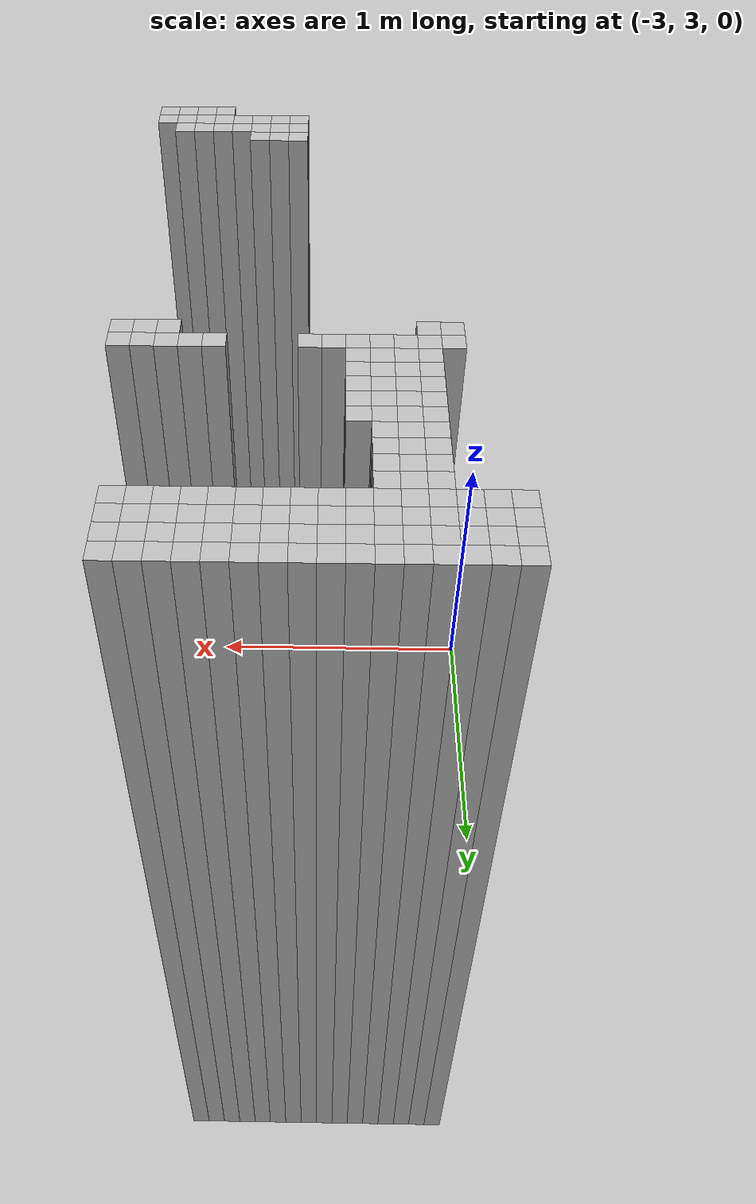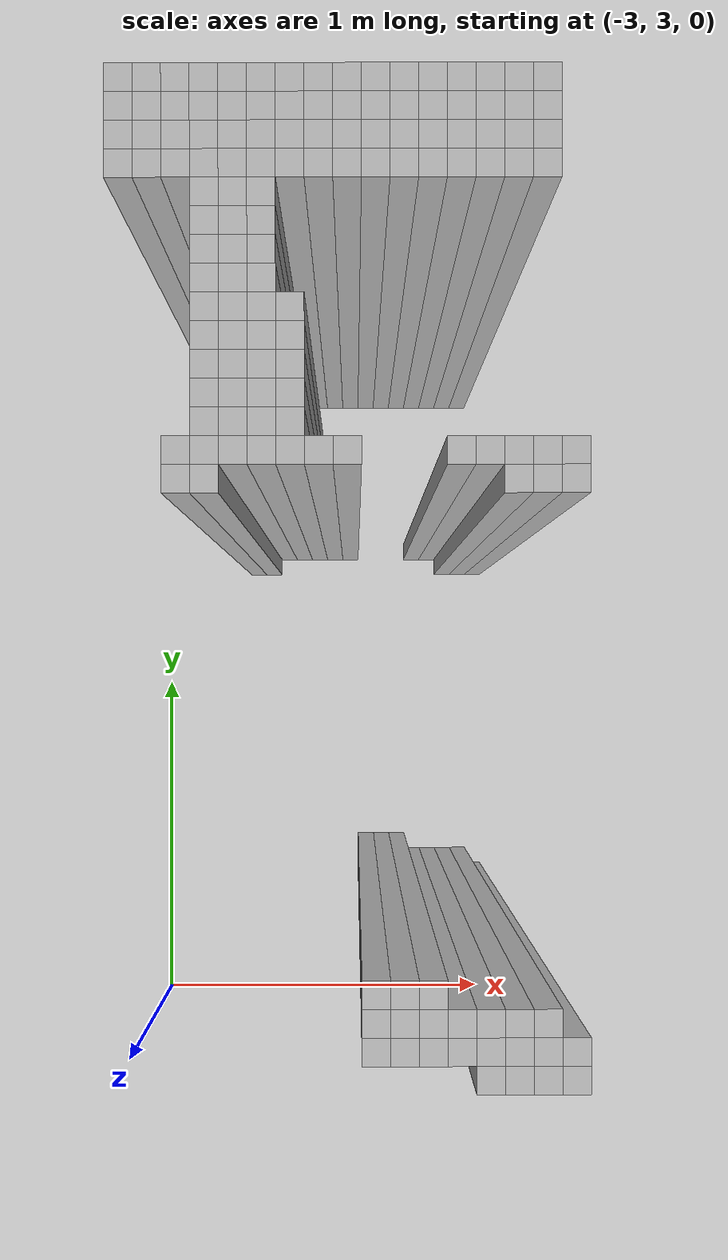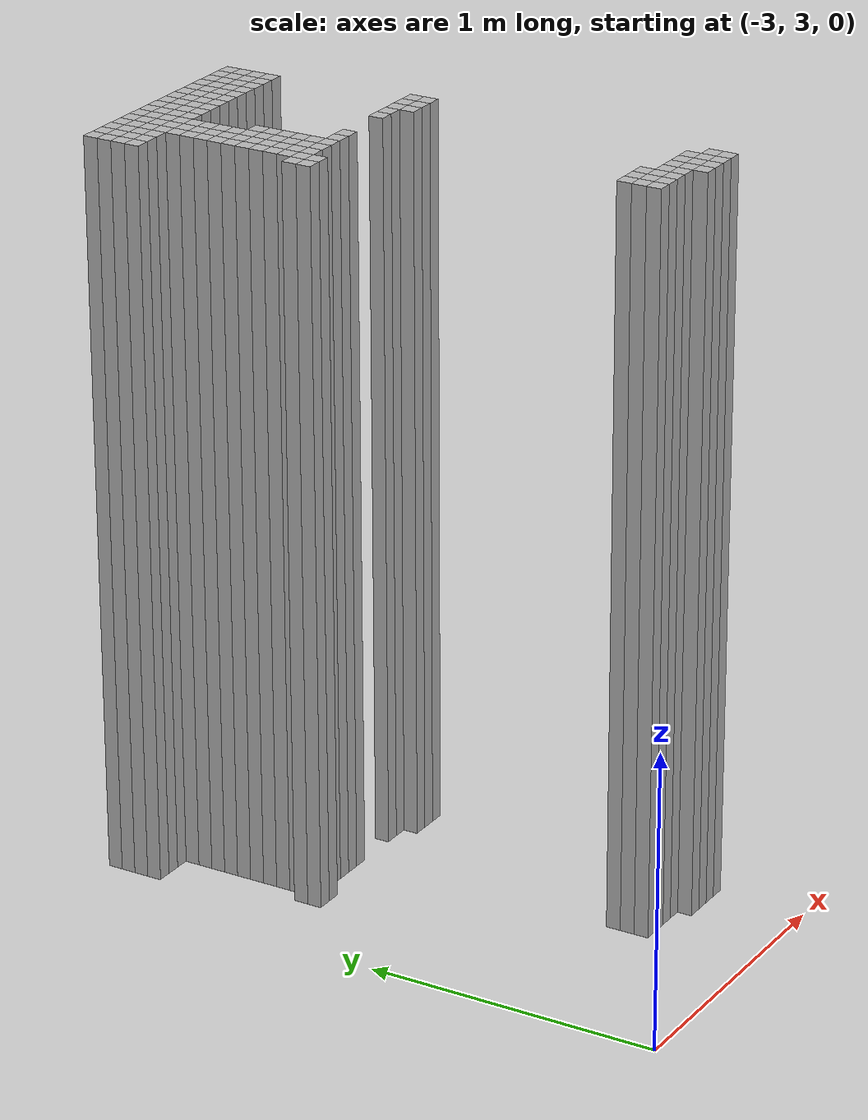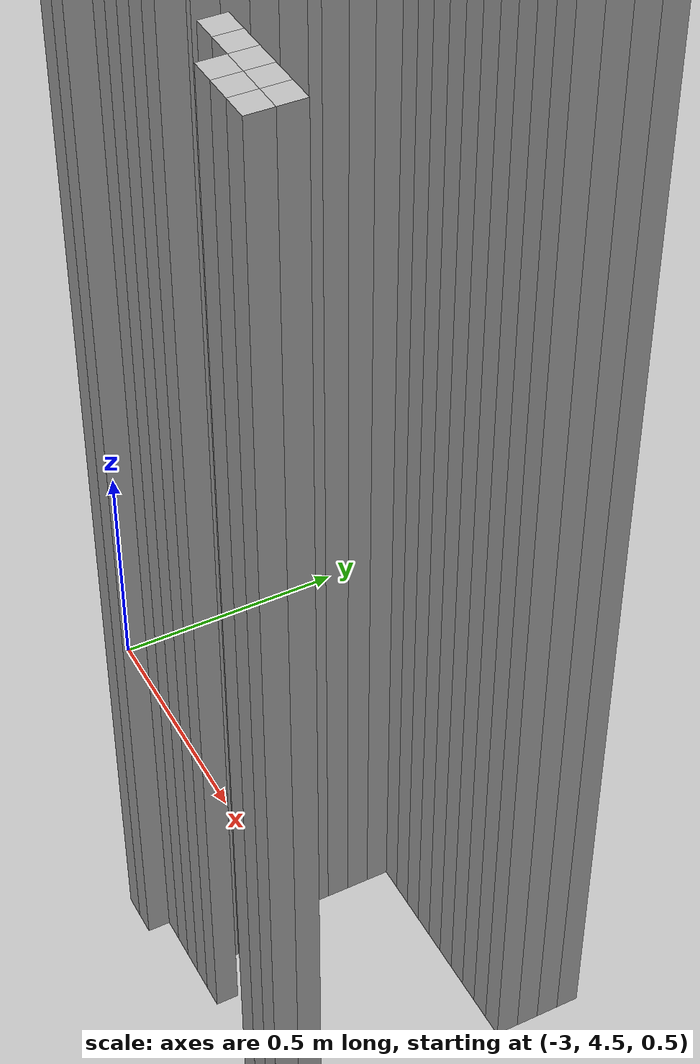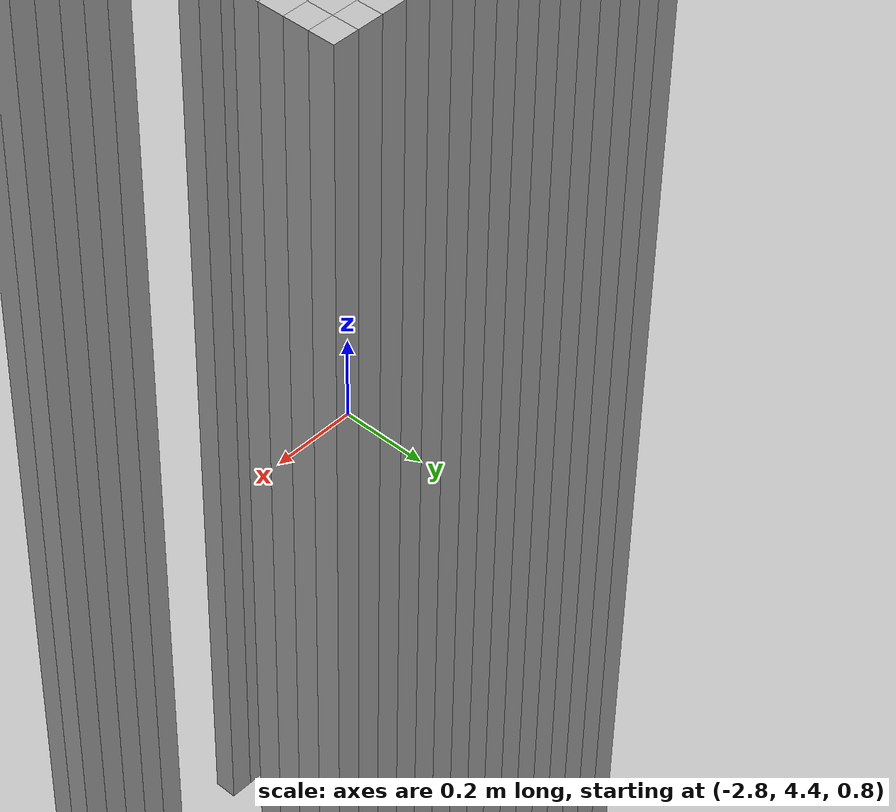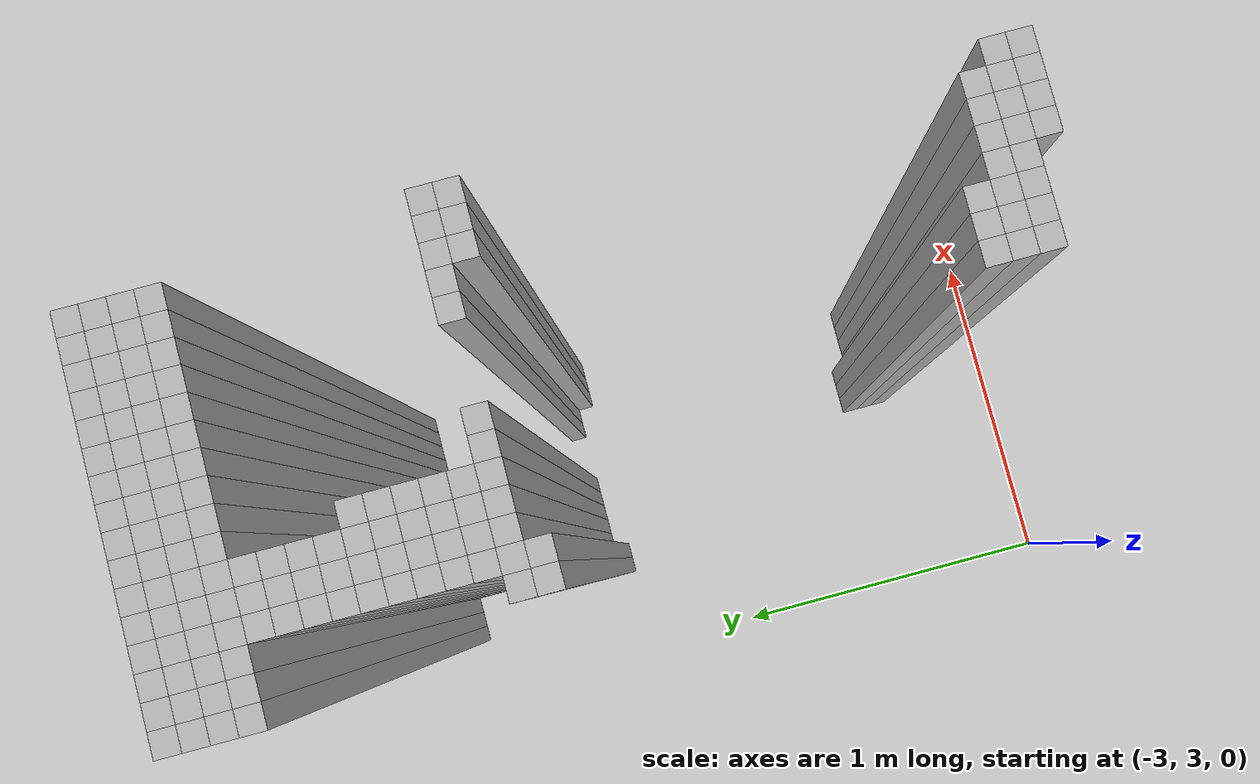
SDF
<sdf version="1.9">
 <world name="map_world">
  <model name="wall_167_52">
   <static>true</static>
   <pose>-2.811 5.080 1.250 0 0 0</pose>
   <link name="link">
    <collision name="collision"><geometry><box><size>0.050 0.050 2.500</size></box></geometry></collision>
    <visual name="visual"><geometry><box><size>0.050 0.050 2.500</size></box></geometry></visual>
   </link>
  </model>
  <model name="wall_168_52">
   <static>true</static>
   <pose>-2.761 5.080 1.250 0 0 0</pose>
   <link name="link">
    <collision name="collision"><geometry><box><size>0.050 0.050 2.500</size></box></geometry></collision>
    <visual name="visual"><geometry><box><size>0.050 0.050 2.500</size></box></geometry></visual>
   </link>
  </model>
  <model name="wall_169_52">
   <static>true</static>
   <pose>-2.711 5.080 1.250 0 0 0</pose>
   <link name="link">
    <collision name="collision"><geometry><box><size>0.050 0.050 2.500</size></box></geometry></collision>
    <visual name="visual"><geometry><box><size>0.050 0.050 2.500</size></box></geometry></visual>
   </link>
  </model>
  <model name="wall_170_52">
   <static>true</static>
   <pose>-2.661 5.080 1.250 0 0 0</pose>
   <link name="link">
    <collision name="collision"><geometry><box><size>0.050 0.050 2.500</size></box></geometry></collision>
    <visual name="visual"><geometry><box><size>0.050 0.050 2.500</size></box></geometry></visual>
   </link>
  </model>
  <model name="wall_171_52">
   <static>true</static>
   <pose>-2.611 5.080 1.250 0 0 0</pose>
   <link name="link">
    <collision name="collision"><geometry><box><size>0.050 0.050 2.500</size></box></geometry></collision>
    <visual name="visual"><geometry><box><size>0.050 0.050 2.500</size></box></geometry></visual>
   </link>
  </model>
  <model name="wall_172_52">
   <static>true</static>
   <pose>-2.561 5.080 1.250 0 0 0</pose>
   <link name="link">
    <collision name="collision"><geometry><box><size>0.050 0.050 2.500</size></box></geometry></collision>
    <visual name="visual"><geometry><box><size>0.050 0.050 2.500</size></box></geometry></visual>
   </link>
  </model>
  <model name="wall_173_52">
   <static>true</static>
   <pose>-2.511 5.080 1.250 0 0 0</pose>
   <link name="link">
    <collision name="collision"><geometry><box><size>0.050 0.050 2.500</size></box></geometry></collision>
    <visual name="visual"><geometry><box><size>0.050 0.050 2.500</size></box></geometry></visual>
   </link>
  </model>
  <model name="wall_174_52">
   <static>true</static>
   <pose>-2.461 5.080 1.250 0 0 0</pose>
   <link name="link">
    <collision name="collision"><geometry><box><size>0.050 0.050 2.500</size></box></geometry></collision>
    <visual name="visual"><geometry><box><size>0.050 0.050 2.500</size></box></geometry></visual>
   </link>
  </model>
  <model name="wall_175_52">
   <static>true</static>
   <pose>-2.411 5.080 1.250 0 0 0</pose>
   <link name="link">
    <collision name="collision"><geometry><box><size>0.050 0.050 2.500</size></box></geometry></collision>
    <visual name="visual"><geometry><box><size>0.050 0.050 2.500</size></box></geometry></visual>
   </link>
  </model>
  <model name="wall_176_52">
   <static>true</static>
   <pose>-2.361 5.080 1.250 0 0 0</pose>
   <link name="link">
    <collision name="collision"><geometry><box><size>0.050 0.050 2.500</size></box></geometry></collision>
    <visual name="visual"><geometry><box><size>0.050 0.050 2.500</size></box></geometry></visual>
   </link>
  </model>
  <model name="wall_177_52">
   <static>true</static>
   <pose>-2.311 5.080 1.250 0 0 0</pose>
   <link name="link">
    <collision name="collision"><geometry><box><size>0.050 0.050 2.500</size></box></geometry></collision>
    <visual name="visual"><geometry><box><size>0.050 0.050 2.500</size></box></geometry></visual>
   </link>
  </model>
  <model name="wall_178_52">
   <static>true</static>
   <pose>-2.261 5.080 1.250 0 0 0</pose>
   <link name="link">
    <collision name="collision"><geometry><box><size>0.050 0.050 2.500</size></box></geometry></collision>
    <visual name="visual"><geometry><box><size>0.050 0.050 2.500</size></box></geometry></visual>
   </link>
  </model>
  <model name="wall_179_52">
   <static>true</static>
   <pose>-2.211 5.080 1.250 0 0 0</pose>
   <link name="link">
    <collision name="collision"><geometry><box><size>0.050 0.050 2.500</size></box></geometry></collision>
    <visual name="visual"><geometry><box><size>0.050 0.050 2.500</size></box></geometry></visual>
   </link>
  </model>
  <model name="wall_180_52">
   <static>true</static>
   <pose>-2.161 5.080 1.250 0 0 0</pose>
   <link name="link">
    <collision name="collision"><geometry><box><size>0.050 0.050 2.500</size></box></geometry></collision>
    <visual name="visual"><geometry><box><size>0.050 0.050 2.500</size></box></geometry></visual>
   </link>
  </model>
  <model name="wall_181_52">
   <static>true</static>
   <pose>-2.111 5.080 1.250 0 0 0</pose>
   <link name="link">
    <collision name="collision"><geometry><box><size>0.050 0.050 2.500</size></box></geometry></collision>
    <visual name="visual"><geometry><box><size>0.050 0.050 2.500</size></box></geometry></visual>
   </link>
  </model>
  <model name="wall_182_52">
   <static>true</static>
   <pose>-2.061 5.080 1.250 0 0 0</pose>
   <link name="link">
    <collision name="collision"><geometry><box><size>0.050 0.050 2.500</size></box></geometry></collision>
    <visual name="visual"><geometry><box><size>0.050 0.050 2.500</size></box></geometry></visual>
   </link>
  </model>
  <model name="wall_167_53">
   <static>true</static>
   <pose>-2.811 5.030 1.250 0 0 0</pose>
   <link name="link">
    <collision name="collision"><geometry><box><size>0.050 0.050 2.500</size></box></geometry></collision>
    <visual name="visual"><geometry><box><size>0.050 0.050 2.500</size></box></geometry></visual>
   </link>
  </model>
  <model name="wall_168_53">
   <static>true</static>
   <pose>-2.761 5.030 1.250 0 0 0</pose>
   <link name="link">
    <collision name="collision"><geometry><box><size>0.050 0.050 2.500</size></box></geometry></collision>
    <visual name="visual"><geometry><box><size>0.050 0.050 2.500</size></box></geometry></visual>
   </link>
  </model>
  <model name="wall_169_53">
   <static>true</static>
   <pose>-2.711 5.030 1.250 0 0 0</pose>
   <link name="link">
    <collision name="collision"><geometry><box><size>0.050 0.050 2.500</size></box></geometry></collision>
    <visual name="visual"><geometry><box><size>0.050 0.050 2.500</size></box></geometry></visual>
   </link>
  </model>
  <model name="wall_170_53">
   <static>true</static>
   <pose>-2.661 5.030 1.250 0 0 0</pose>
   <link name="link">
    <collision name="collision"><geometry><box><size>0.050 0.050 2.500</size></box></geometry></collision>
    <visual name="visual"><geometry><box><size>0.050 0.050 2.500</size></box></geometry></visual>
   </link>
  </model>
  <model name="wall_171_53">
   <static>true</static>
   <pose>-2.611 5.030 1.250 0 0 0</pose>
   <link name="link">
    <collision name="collision"><geometry><box><size>0.050 0.050 2.500</size></box></geometry></collision>
    <visual name="visual"><geometry><box><size>0.050 0.050 2.500</size></box></geometry></visual>
   </link>
  </model>
  <model name="wall_172_53">
   <static>true</static>
   <pose>-2.561 5.030 1.250 0 0 0</pose>
   <link name="link">
    <collision name="collision"><geometry><box><size>0.050 0.050 2.500</size></box></geometry></collision>
    <visual name="visual"><geometry><box><size>0.050 0.050 2.500</size></box></geometry></visual>
   </link>
  </model>
  <model name="wall_173_53">
   <static>true</static>
   <pose>-2.511 5.030 1.250 0 0 0</pose>
   <link name="link">
    <collision name="collision"><geometry><box><size>0.050 0.050 2.500</size></box></geometry></collision>
    <visual name="visual"><geometry><box><size>0.050 0.050 2.500</size></box></geometry></visual>
   </link>
  </model>
  <model name="wall_174_53">
   <static>true</static>
   <pose>-2.461 5.030 1.250 0 0 0</pose>
   <link name="link">
    <collision name="collision"><geometry><box><size>0.050 0.050 2.500</size></box></geometry></collision>
    <visual name="visual"><geometry><box><size>0.050 0.050 2.500</size></box></geometry></visual>
   </link>
  </model>
  <model name="wall_175_53">
   <static>true</static>
   <pose>-2.411 5.030 1.250 0 0 0</pose>
   <link name="link">
    <collision name="collision"><geometry><box><size>0.050 0.050 2.500</size></box></geometry></collision>
    <visual name="visual"><geometry><box><size>0.050 0.050 2.500</size></box></geometry></visual>
   </link>
  </model>
  <model name="wall_176_53">
   <static>true</static>
   <pose>-2.361 5.030 1.250 0 0 0</pose>
   <link name="link">
    <collision name="collision"><geometry><box><size>0.050 0.050 2.500</size></box></geometry></collision>
    <visual name="visual"><geometry><box><size>0.050 0.050 2.500</size></box></geometry></visual>
   </link>
  </model>
  <model name="wall_177_53">
   <static>true</static>
   <pose>-2.311 5.030 1.250 0 0 0</pose>
   <link name="link">
    <collision name="collision"><geometry><box><size>0.050 0.050 2.500</size></box></geometry></collision>
    <visual name="visual"><geometry><box><size>0.050 0.050 2.500</size></box></geometry></visual>
   </link>
  </model>
  <model name="wall_178_53">
   <static>true</static>
   <pose>-2.261 5.030 1.250 0 0 0</pose>
   <link name="link">
    <collision name="collision"><geometry><box><size>0.050 0.050 2.500</size></box></geometry></collision>
    <visual name="visual"><geometry><box><size>0.050 0.050 2.500</size></box></geometry></visual>
   </link>
  </model>
  <model name="wall_179_53">
   <static>true</static>
   <pose>-2.211 5.030 1.250 0 0 0</pose>
   <link name="link">
    <collision name="collision"><geometry><box><size>0.050 0.050 2.500</size></box></geometry></collision>
    <visual name="visual"><geometry><box><size>0.050 0.050 2.500</size></box></geometry></visual>
   </link>
  </model>
  <model name="wall_180_53">
   <static>true</static>
   <pose>-2.161 5.030 1.250 0 0 0</pose>
   <link name="link">
    <collision name="collision"><geometry><box><size>0.050 0.050 2.500</size></box></geometry></collision>
    <visual name="visual"><geometry><box><size>0.050 0.050 2.500</size></box></geometry></visual>
   </link>
  </model>
  <model name="wall_181_53">
   <static>true</static>
   <pose>-2.111 5.030 1.250 0 0 0</pose>
   <link name="link">
    <collision name="collision"><geometry><box><size>0.050 0.050 2.500</size></box></geometry></collision>
    <visual name="visual"><geometry><box><size>0.050 0.050 2.500</size></box></geometry></visual>
   </link>
  </model>
  <model name="wall_182_53">
   <static>true</static>
   <pose>-2.061 5.030 1.250 0 0 0</pose>
   <link name="link">
    <collision name="collision"><geometry><box><size>0.050 0.050 2.500</size></box></geometry></collision>
    <visual name="visual"><geometry><box><size>0.050 0.050 2.500</size></box></geometry></visual>
   </link>
  </model>
  <model name="wall_167_54">
   <static>true</static>
   <pose>-2.811 4.980 1.250 0 0 0</pose>
   <link name="link">
    <collision name="collision"><geometry><box><size>0.050 0.050 2.500</size></box></geometry></collision>
    <visual name="visual"><geometry><box><size>0.050 0.050 2.500</size></box></geometry></visual>
   </link>
  </model>
  <model name="wall_168_54">
   <static>true</static>
   <pose>-2.761 4.980 1.250 0 0 0</pose>
   <link name="link">
    <collision name="collision"><geometry><box><size>0.050 0.050 2.500</size></box></geometry></collision>
    <visual name="visual"><geometry><box><size>0.050 0.050 2.500</size></box></geometry></visual>
   </link>
  </model>
  <model name="wall_169_54">
   <static>true</static>
   <pose>-2.711 4.980 1.250 0 0 0</pose>
   <link name="link">
    <collision name="collision"><geometry><box><size>0.050 0.050 2.500</size></box></geometry></collision>
    <visual name="visual"><geometry><box><size>0.050 0.050 2.500</size></box></geometry></visual>
   </link>
  </model>
  <model name="wall_170_54">
   <static>true</static>
   <pose>-2.661 4.980 1.250 0 0 0</pose>
   <link name="link">
    <collision name="collision"><geometry><box><size>0.050 0.050 2.500</size></box></geometry></collision>
    <visual name="visual"><geometry><box><size>0.050 0.050 2.500</size></box></geometry></visual>
   </link>
  </model>
  <model name="wall_171_54">
   <static>true</static>
   <pose>-2.611 4.980 1.250 0 0 0</pose>
   <link name="link">
    <collision name="collision"><geometry><box><size>0.050 0.050 2.500</size></box></geometry></collision>
    <visual name="visual"><geometry><box><size>0.050 0.050 2.500</size></box></geometry></visual>
   </link>
  </model>
  <model name="wall_172_54">
   <static>true</static>
   <pose>-2.561 4.980 1.250 0 0 0</pose>
   <link name="link">
    <collision name="collision"><geometry><box><size>0.050 0.050 2.500</size></box></geometry></collision>
    <visual name="visual"><geometry><box><size>0.050 0.050 2.500</size></box></geometry></visual>
   </link>
  </model>
  <model name="wall_173_54">
   <static>true</static>
   <pose>-2.511 4.980 1.250 0 0 0</pose>
   <link name="link">
    <collision name="collision"><geometry><box><size>0.050 0.050 2.500</size></box></geometry></collision>
    <visual name="visual"><geometry><box><size>0.050 0.050 2.500</size></box></geometry></visual>
   </link>
  </model>
  <model name="wall_174_54">
   <static>true</static>
   <pose>-2.461 4.980 1.250 0 0 0</pose>
   <link name="link">
    <collision name="collision"><geometry><box><size>0.050 0.050 2.500</size></box></geometry></collision>
    <visual name="visual"><geometry><box><size>0.050 0.050 2.500</size></box></geometry></visual>
   </link>
  </model>
  <model name="wall_175_54">
   <static>true</static>
   <pose>-2.411 4.980 1.250 0 0 0</pose>
   <link name="link">
    <collision name="collision"><geometry><box><size>0.050 0.050 2.500</size></box></geometry></collision>
    <visual name="visual"><geometry><box><size>0.050 0.050 2.500</size></box></geometry></visual>
   </link>
  </model>
  <model name="wall_176_54">
   <static>true</static>
   <pose>-2.361 4.980 1.250 0 0 0</pose>
   <link name="link">
    <collision name="collision"><geometry><box><size>0.050 0.050 2.500</size></box></geometry></collision>
    <visual name="visual"><geometry><box><size>0.050 0.050 2.500</size></box></geometry></visual>
   </link>
  </model>
  <model name="wall_177_54">
   <static>true</static>
   <pose>-2.311 4.980 1.250 0 0 0</pose>
   <link name="link">
    <collision name="collision"><geometry><box><size>0.050 0.050 2.500</size></box></geometry></collision>
    <visual name="visual"><geometry><box><size>0.050 0.050 2.500</size></box></geometry></visual>
   </link>
  </model>
  <model name="wall_178_54">
   <static>true</static>
   <pose>-2.261 4.980 1.250 0 0 0</pose>
   <link name="link">
    <collision name="collision"><geometry><box><size>0.050 0.050 2.500</size></box></geometry></collision>
    <visual name="visual"><geometry><box><size>0.050 0.050 2.500</size></box></geometry></visual>
   </link>
  </model>
  <model name="wall_179_54">
   <static>true</static>
   <pose>-2.211 4.980 1.250 0 0 0</pose>
   <link name="link">
    <collision name="collision"><geometry><box><size>0.050 0.050 2.500</size></box></geometry></collision>
    <visual name="visual"><geometry><box><size>0.050 0.050 2.500</size></box></geometry></visual>
   </link>
  </model>
  <model name="wall_180_54">
   <static>true</static>
   <pose>-2.161 4.980 1.250 0 0 0</pose>
   <link name="link">
    <collision name="collision"><geometry><box><size>0.050 0.050 2.500</size></box></geometry></collision>
    <visual name="visual"><geometry><box><size>0.050 0.050 2.500</size></box></geometry></visual>
   </link>
  </model>
  <model name="wall_181_54">
   <static>true</static>
   <pose>-2.111 4.980 1.250 0 0 0</pose>
   <link name="link">
    <collision name="collision"><geometry><box><size>0.050 0.050 2.500</size></box></geometry></collision>
    <visual name="visual"><geometry><box><size>0.050 0.050 2.500</size></box></geometry></visual>
   </link>
  </model>
  <model name="wall_182_54">
   <static>true</static>
   <pose>-2.061 4.980 1.250 0 0 0</pose>
   <link name="link">
    <collision name="collision"><geometry><box><size>0.050 0.050 2.500</size></box></geometry></collision>
    <visual name="visual"><geometry><box><size>0.050 0.050 2.500</size></box></geometry></visual>
   </link>
  </model>
  <model name="wall_167_55">
   <static>true</static>
   <pose>-2.811 4.930 1.250 0 0 0</pose>
   <link name="link">
    <collision name="collision"><geometry><box><size>0.050 0.050 2.500</size></box></geometry></collision>
    <visual name="visual"><geometry><box><size>0.050 0.050 2.500</size></box></geometry></visual>
   </link>
  </model>
  <model name="wall_168_55">
   <static>true</static>
   <pose>-2.761 4.930 1.250 0 0 0</pose>
   <link name="link">
    <collision name="collision"><geometry><box><size>0.050 0.050 2.500</size></box></geometry></collision>
    <visual name="visual"><geometry><box><size>0.050 0.050 2.500</size></box></geometry></visual>
   </link>
  </model>
  <model name="wall_169_55">
   <static>true</static>
   <pose>-2.711 4.930 1.250 0 0 0</pose>
   <link name="link">
    <collision name="collision"><geometry><box><size>0.050 0.050 2.500</size></box></geometry></collision>
    <visual name="visual"><geometry><box><size>0.050 0.050 2.500</size></box></geometry></visual>
   </link>
  </model>
  <model name="wall_170_55">
   <static>true</static>
   <pose>-2.661 4.930 1.250 0 0 0</pose>
   <link name="link">
    <collision name="collision"><geometry><box><size>0.050 0.050 2.500</size></box></geometry></collision>
    <visual name="visual"><geometry><box><size>0.050 0.050 2.500</size></box></geometry></visual>
   </link>
  </model>
  <model name="wall_171_55">
   <static>true</static>
   <pose>-2.611 4.930 1.250 0 0 0</pose>
   <link name="link">
    <collision name="collision"><geometry><box><size>0.050 0.050 2.500</size></box></geometry></collision>
    <visual name="visual"><geometry><box><size>0.050 0.050 2.500</size></box></geometry></visual>
   </link>
  </model>
  <model name="wall_172_55">
   <static>true</static>
   <pose>-2.561 4.930 1.250 0 0 0</pose>
   <link name="link">
    <collision name="collision"><geometry><box><size>0.050 0.050 2.500</size></box></geometry></collision>
    <visual name="visual"><geometry><box><size>0.050 0.050 2.500</size></box></geometry></visual>
   </link>
  </model>
  <model name="wall_173_55">
   <static>true</static>
   <pose>-2.511 4.930 1.250 0 0 0</pose>
   <link name="link">
    <collision name="collision"><geometry><box><size>0.050 0.050 2.500</size></box></geometry></collision>
    <visual name="visual"><geometry><box><size>0.050 0.050 2.500</size></box></geometry></visual>
   </link>
  </model>
  <model name="wall_174_55">
   <static>true</static>
   <pose>-2.461 4.930 1.250 0 0 0</pose>
   <link name="link">
    <collision name="collision"><geometry><box><size>0.050 0.050 2.500</size></box></geometry></collision>
    <visual name="visual"><geometry><box><size>0.050 0.050 2.500</size></box></geometry></visual>
   </link>
  </model>
  <model name="wall_175_55">
   <static>true</static>
   <pose>-2.411 4.930 1.250 0 0 0</pose>
   <link name="link">
    <collision name="collision"><geometry><box><size>0.050 0.050 2.500</size></box></geometry></collision>
    <visual name="visual"><geometry><box><size>0.050 0.050 2.500</size></box></geometry></visual>
   </link>
  </model>
  <model name="wall_176_55">
   <static>true</static>
   <pose>-2.361 4.930 1.250 0 0 0</pose>
   <link name="link">
    <collision name="collision"><geometry><box><size>0.050 0.050 2.500</size></box></geometry></collision>
    <visual name="visual"><geometry><box><size>0.050 0.050 2.500</size></box></geometry></visual>
   </link>
  </model>
  <model name="wall_177_55">
   <static>true</static>
   <pose>-2.311 4.930 1.250 0 0 0</pose>
   <link name="link">
    <collision name="collision"><geometry><box><size>0.050 0.050 2.500</size></box></geometry></collision>
    <visual name="visual"><geometry><box><size>0.050 0.050 2.500</size></box></geometry></visual>
   </link>
  </model>
  <model name="wall_178_55">
   <static>true</static>
   <pose>-2.261 4.930 1.250 0 0 0</pose>
   <link name="link">
    <collision name="collision"><geometry><box><size>0.050 0.050 2.500</size></box></geometry></collision>
    <visual name="visual"><geometry><box><size>0.050 0.050 2.500</size></box></geometry></visual>
   </link>
  </model>
  <model name="wall_179_55">
   <static>true</static>
   <pose>-2.211 4.930 1.250 0 0 0</pose>
   <link name="link">
    <collision name="collision"><geometry><box><size>0.050 0.050 2.500</size></box></geometry></collision>
    <visual name="visual"><geometry><box><size>0.050 0.050 2.500</size></box></geometry></visual>
   </link>
  </model>
  <model name="wall_180_55">
   <static>true</static>
   <pose>-2.161 4.930 1.250 0 0 0</pose>
   <link name="link">
    <collision name="collision"><geometry><box><size>0.050 0.050 2.500</size></box></geometry></collision>
    <visual name="visual"><geometry><box><size>0.050 0.050 2.500</size></box></geometry></visual>
   </link>
  </model>
  <model name="wall_181_55">
   <static>true</static>
   <pose>-2.111 4.930 1.250 0 0 0</pose>
   <link name="link">
    <collision name="collision"><geometry><box><size>0.050 0.050 2.500</size></box></geometry></collision>
    <visual name="visual"><geometry><box><size>0.050 0.050 2.500</size></box></geometry></visual>
   </link>
  </model>
  <model name="wall_182_55">
   <static>true</static>
   <pose>-2.061 4.930 1.250 0 0 0</pose>
   <link name="link">
    <collision name="collision"><geometry><box><size>0.050 0.050 2.500</size></box></geometry></collision>
    <visual name="visual"><geometry><box><size>0.050 0.050 2.500</size></box></geometry></visual>
   </link>
  </model>
  <model name="wall_170_56">
   <static>true</static>
   <pose>-2.661 4.880 1.250 0 0 0</pose>
   <link name="link">
    <collision name="collision"><geometry><box><size>0.050 0.050 2.500</size></box></geometry></collision>
    <visual name="visual"><geometry><box><size>0.050 0.050 2.500</size></box></geometry></visual>
   </link>
  </model>
  <model name="wall_171_56">
   <static>true</static>
   <pose>-2.611 4.880 1.250 0 0 0</pose>
   <link name="link">
    <collision name="collision"><geometry><box><size>0.050 0.050 2.500</size></box></geometry></collision>
    <visual name="visual"><geometry><box><size>0.050 0.050 2.500</size></box></geometry></visual>
   </link>
  </model>
  <model name="wall_172_56">
   <static>true</static>
   <pose>-2.561 4.880 1.250 0 0 0</pose>
   <link name="link">
    <collision name="collision"><geometry><box><size>0.050 0.050 2.500</size></box></geometry></collision>
    <visual name="visual"><geometry><box><size>0.050 0.050 2.500</size></box></geometry></visual>
   </link>
  </model>
  <model name="wall_170_57">
   <static>true</static>
   <pose>-2.661 4.830 1.250 0 0 0</pose>
   <link name="link">
    <collision name="collision"><geometry><box><size>0.050 0.050 2.500</size></box></geometry></collision>
    <visual name="visual"><geometry><box><size>0.050 0.050 2.500</size></box></geometry></visual>
   </link>
  </model>
  <model name="wall_171_57">
   <static>true</static>
   <pose>-2.611 4.830 1.250 0 0 0</pose>
   <link name="link">
    <collision name="collision"><geometry><box><size>0.050 0.050 2.500</size></box></geometry></collision>
    <visual name="visual"><geometry><box><size>0.050 0.050 2.500</size></box></geometry></visual>
   </link>
  </model>
  <model name="wall_172_57">
   <static>true</static>
   <pose>-2.561 4.830 1.250 0 0 0</pose>
   <link name="link">
    <collision name="collision"><geometry><box><size>0.050 0.050 2.500</size></box></geometry></collision>
    <visual name="visual"><geometry><box><size>0.050 0.050 2.500</size></box></geometry></visual>
   </link>
  </model>
  <model name="wall_170_58">
   <static>true</static>
   <pose>-2.661 4.780 1.250 0 0 0</pose>
   <link name="link">
    <collision name="collision"><geometry><box><size>0.050 0.050 2.500</size></box></geometry></collision>
    <visual name="visual"><geometry><box><size>0.050 0.050 2.500</size></box></geometry></visual>
   </link>
  </model>
  <model name="wall_171_58">
   <static>true</static>
   <pose>-2.611 4.780 1.250 0 0 0</pose>
   <link name="link">
    <collision name="collision"><geometry><box><size>0.050 0.050 2.500</size></box></geometry></collision>
    <visual name="visual"><geometry><box><size>0.050 0.050 2.500</size></box></geometry></visual>
   </link>
  </model>
  <model name="wall_172_58">
   <static>true</static>
   <pose>-2.561 4.780 1.250 0 0 0</pose>
   <link name="link">
    <collision name="collision"><geometry><box><size>0.050 0.050 2.500</size></box></geometry></collision>
    <visual name="visual"><geometry><box><size>0.050 0.050 2.500</size></box></geometry></visual>
   </link>
  </model>
  <model name="wall_170_59">
   <static>true</static>
   <pose>-2.661 4.730 1.250 0 0 0</pose>
   <link name="link">
    <collision name="collision"><geometry><box><size>0.050 0.050 2.500</size></box></geometry></collision>
    <visual name="visual"><geometry><box><size>0.050 0.050 2.500</size></box></geometry></visual>
   </link>
  </model>
  <model name="wall_171_59">
   <static>true</static>
   <pose>-2.611 4.730 1.250 0 0 0</pose>
   <link name="link">
    <collision name="collision"><geometry><box><size>0.050 0.050 2.500</size></box></geometry></collision>
    <visual name="visual"><geometry><box><size>0.050 0.050 2.500</size></box></geometry></visual>
   </link>
  </model>
  <model name="wall_172_59">
   <static>true</static>
   <pose>-2.561 4.730 1.250 0 0 0</pose>
   <link name="link">
    <collision name="collision"><geometry><box><size>0.050 0.050 2.500</size></box></geometry></collision>
    <visual name="visual"><geometry><box><size>0.050 0.050 2.500</size></box></geometry></visual>
   </link>
  </model>
  <model name="wall_170_60">
   <static>true</static>
   <pose>-2.661 4.680 1.250 0 0 0</pose>
   <link name="link">
    <collision name="collision"><geometry><box><size>0.050 0.050 2.500</size></box></geometry></collision>
    <visual name="visual"><geometry><box><size>0.050 0.050 2.500</size></box></geometry></visual>
   </link>
  </model>
  <model name="wall_171_60">
   <static>true</static>
   <pose>-2.611 4.680 1.250 0 0 0</pose>
   <link name="link">
    <collision name="collision"><geometry><box><size>0.050 0.050 2.500</size></box></geometry></collision>
    <visual name="visual"><geometry><box><size>0.050 0.050 2.500</size></box></geometry></visual>
   </link>
  </model>
  <model name="wall_172_60">
   <static>true</static>
   <pose>-2.561 4.680 1.250 0 0 0</pose>
   <link name="link">
    <collision name="collision"><geometry><box><size>0.050 0.050 2.500</size></box></geometry></collision>
    <visual name="visual"><geometry><box><size>0.050 0.050 2.500</size></box></geometry></visual>
   </link>
  </model>
  <model name="wall_173_60">
   <static>true</static>
   <pose>-2.511 4.680 1.250 0 0 0</pose>
   <link name="link">
    <collision name="collision"><geometry><box><size>0.050 0.050 2.500</size></box></geometry></collision>
    <visual name="visual"><geometry><box><size>0.050 0.050 2.500</size></box></geometry></visual>
   </link>
  </model>
  <model name="wall_170_61">
   <static>true</static>
   <pose>-2.661 4.630 1.250 0 0 0</pose>
   <link name="link">
    <collision name="collision"><geometry><box><size>0.050 0.050 2.500</size></box></geometry></collision>
    <visual name="visual"><geometry><box><size>0.050 0.050 2.500</size></box></geometry></visual>
   </link>
  </model>
  <model name="wall_171_61">
   <static>true</static>
   <pose>-2.611 4.630 1.250 0 0 0</pose>
   <link name="link">
    <collision name="collision"><geometry><box><size>0.050 0.050 2.500</size></box></geometry></collision>
    <visual name="visual"><geometry><box><size>0.050 0.050 2.500</size></box></geometry></visual>
   </link>
  </model>
  <model name="wall_172_61">
   <static>true</static>
   <pose>-2.561 4.630 1.250 0 0 0</pose>
   <link name="link">
    <collision name="collision"><geometry><box><size>0.050 0.050 2.500</size></box></geometry></collision>
    <visual name="visual"><geometry><box><size>0.050 0.050 2.500</size></box></geometry></visual>
   </link>
  </model>
  <model name="wall_173_61">
   <static>true</static>
   <pose>-2.511 4.630 1.250 0 0 0</pose>
   <link name="link">
    <collision name="collision"><geometry><box><size>0.050 0.050 2.500</size></box></geometry></collision>
    <visual name="visual"><geometry><box><size>0.050 0.050 2.500</size></box></geometry></visual>
   </link>
  </model>
  <model name="wall_170_62">
   <static>true</static>
   <pose>-2.661 4.580 1.250 0 0 0</pose>
   <link name="link">
    <collision name="collision"><geometry><box><size>0.050 0.050 2.500</size></box></geometry></collision>
    <visual name="visual"><geometry><box><size>0.050 0.050 2.500</size></box></geometry></visual>
   </link>
  </model>
  <model name="wall_171_62">
   <static>true</static>
   <pose>-2.611 4.580 1.250 0 0 0</pose>
   <link name="link">
    <collision name="collision"><geometry><box><size>0.050 0.050 2.500</size></box></geometry></collision>
    <visual name="visual"><geometry><box><size>0.050 0.050 2.500</size></box></geometry></visual>
   </link>
  </model>
  <model name="wall_172_62">
   <static>true</static>
   <pose>-2.561 4.580 1.250 0 0 0</pose>
   <link name="link">
    <collision name="collision"><geometry><box><size>0.050 0.050 2.500</size></box></geometry></collision>
    <visual name="visual"><geometry><box><size>0.050 0.050 2.500</size></box></geometry></visual>
   </link>
  </model>
  <model name="wall_173_62">
   <static>true</static>
   <pose>-2.511 4.580 1.250 0 0 0</pose>
   <link name="link">
    <collision name="collision"><geometry><box><size>0.050 0.050 2.500</size></box></geometry></collision>
    <visual name="visual"><geometry><box><size>0.050 0.050 2.500</size></box></geometry></visual>
   </link>
  </model>
  <model name="wall_170_63">
   <static>true</static>
   <pose>-2.661 4.530 1.250 0 0 0</pose>
   <link name="link">
    <collision name="collision"><geometry><box><size>0.050 0.050 2.500</size></box></geometry></collision>
    <visual name="visual"><geometry><box><size>0.050 0.050 2.500</size></box></geometry></visual>
   </link>
  </model>
  <model name="wall_171_63">
   <static>true</static>
   <pose>-2.611 4.530 1.250 0 0 0</pose>
   <link name="link">
    <collision name="collision"><geometry><box><size>0.050 0.050 2.500</size></box></geometry></collision>
    <visual name="visual"><geometry><box><size>0.050 0.050 2.500</size></box></geometry></visual>
   </link>
  </model>
  <model name="wall_172_63">
   <static>true</static>
   <pose>-2.561 4.530 1.250 0 0 0</pose>
   <link name="link">
    <collision name="collision"><geometry><box><size>0.050 0.050 2.500</size></box></geometry></collision>
    <visual name="visual"><geometry><box><size>0.050 0.050 2.500</size></box></geometry></visual>
   </link>
  </model>
  <model name="wall_173_63">
   <static>true</static>
   <pose>-2.511 4.530 1.250 0 0 0</pose>
   <link name="link">
    <collision name="collision"><geometry><box><size>0.050 0.050 2.500</size></box></geometry></collision>
    <visual name="visual"><geometry><box><size>0.050 0.050 2.500</size></box></geometry></visual>
   </link>
  </model>
  <model name="wall_170_64">
   <static>true</static>
   <pose>-2.661 4.480 1.250 0 0 0</pose>
   <link name="link">
    <collision name="collision"><geometry><box><size>0.050 0.050 2.500</size></box></geometry></collision>
    <visual name="visual"><geometry><box><size>0.050 0.050 2.500</size></box></geometry></visual>
   </link>
  </model>
  <model name="wall_171_64">
   <static>true</static>
   <pose>-2.611 4.480 1.250 0 0 0</pose>
   <link name="link">
    <collision name="collision"><geometry><box><size>0.050 0.050 2.500</size></box></geometry></collision>
    <visual name="visual"><geometry><box><size>0.050 0.050 2.500</size></box></geometry></visual>
   </link>
  </model>
  <model name="wall_172_64">
   <static>true</static>
   <pose>-2.561 4.480 1.250 0 0 0</pose>
   <link name="link">
    <collision name="collision"><geometry><box><size>0.050 0.050 2.500</size></box></geometry></collision>
    <visual name="visual"><geometry><box><size>0.050 0.050 2.500</size></box></geometry></visual>
   </link>
  </model>
  <model name="wall_173_64">
   <static>true</static>
   <pose>-2.511 4.480 1.250 0 0 0</pose>
   <link name="link">
    <collision name="collision"><geometry><box><size>0.050 0.050 2.500</size></box></geometry></collision>
    <visual name="visual"><geometry><box><size>0.050 0.050 2.500</size></box></geometry></visual>
   </link>
  </model>
  <model name="wall_169_65">
   <static>true</static>
   <pose>-2.711 4.430 1.250 0 0 0</pose>
   <link name="link">
    <collision name="collision"><geometry><box><size>0.050 0.050 2.500</size></box></geometry></collision>
    <visual name="visual"><geometry><box><size>0.050 0.050 2.500</size></box></geometry></visual>
   </link>
  </model>
  <model name="wall_170_65">
   <static>true</static>
   <pose>-2.661 4.430 1.250 0 0 0</pose>
   <link name="link">
    <collision name="collision"><geometry><box><size>0.050 0.050 2.500</size></box></geometry></collision>
    <visual name="visual"><geometry><box><size>0.050 0.050 2.500</size></box></geometry></visual>
   </link>
  </model>
  <model name="wall_171_65">
   <static>true</static>
   <pose>-2.611 4.430 1.250 0 0 0</pose>
   <link name="link">
    <collision name="collision"><geometry><box><size>0.050 0.050 2.500</size></box></geometry></collision>
    <visual name="visual"><geometry><box><size>0.050 0.050 2.500</size></box></geometry></visual>
   </link>
  </model>
  <model name="wall_172_65">
   <static>true</static>
   <pose>-2.561 4.430 1.250 0 0 0</pose>
   <link name="link">
    <collision name="collision"><geometry><box><size>0.050 0.050 2.500</size></box></geometry></collision>
    <visual name="visual"><geometry><box><size>0.050 0.050 2.500</size></box></geometry></visual>
   </link>
  </model>
  <model name="wall_173_65">
   <static>true</static>
   <pose>-2.511 4.430 1.250 0 0 0</pose>
   <link name="link">
    <collision name="collision"><geometry><box><size>0.050 0.050 2.500</size></box></geometry></collision>
    <visual name="visual"><geometry><box><size>0.050 0.050 2.500</size></box></geometry></visual>
   </link>
  </model>
  <model name="wall_174_65">
   <static>true</static>
   <pose>-2.461 4.430 1.250 0 0 0</pose>
   <link name="link">
    <collision name="collision"><geometry><box><size>0.050 0.050 2.500</size></box></geometry></collision>
    <visual name="visual"><geometry><box><size>0.050 0.050 2.500</size></box></geometry></visual>
   </link>
  </model>
  <model name="wall_175_65">
   <static>true</static>
   <pose>-2.411 4.430 1.250 0 0 0</pose>
   <link name="link">
    <collision name="collision"><geometry><box><size>0.050 0.050 2.500</size></box></geometry></collision>
    <visual name="visual"><geometry><box><size>0.050 0.050 2.500</size></box></geometry></visual>
   </link>
  </model>
  <model name="wall_179_65">
   <static>true</static>
   <pose>-2.211 4.430 1.250 0 0 0</pose>
   <link name="link">
    <collision name="collision"><geometry><box><size>0.050 0.050 2.500</size></box></geometry></collision>
    <visual name="visual"><geometry><box><size>0.050 0.050 2.500</size></box></geometry></visual>
   </link>
  </model>
  <model name="wall_180_65">
   <static>true</static>
   <pose>-2.161 4.430 1.250 0 0 0</pose>
   <link name="link">
    <collision name="collision"><geometry><box><size>0.050 0.050 2.500</size></box></geometry></collision>
    <visual name="visual"><geometry><box><size>0.050 0.050 2.500</size></box></geometry></visual>
   </link>
  </model>
  <model name="wall_181_65">
   <static>true</static>
   <pose>-2.111 4.430 1.250 0 0 0</pose>
   <link name="link">
    <collision name="collision"><geometry><box><size>0.050 0.050 2.500</size></box></geometry></collision>
    <visual name="visual"><geometry><box><size>0.050 0.050 2.500</size></box></geometry></visual>
   </link>
  </model>
  <model name="wall_182_65">
   <static>true</static>
   <pose>-2.061 4.430 1.250 0 0 0</pose>
   <link name="link">
    <collision name="collision"><geometry><box><size>0.050 0.050 2.500</size></box></geometry></collision>
    <visual name="visual"><geometry><box><size>0.050 0.050 2.500</size></box></geometry></visual>
   </link>
  </model>
  <model name="wall_183_65">
   <static>true</static>
   <pose>-2.011 4.430 1.250 0 0 0</pose>
   <link name="link">
    <collision name="collision"><geometry><box><size>0.050 0.050 2.500</size></box></geometry></collision>
    <visual name="visual"><geometry><box><size>0.050 0.050 2.500</size></box></geometry></visual>
   </link>
  </model>
  <model name="wall_169_66">
   <static>true</static>
   <pose>-2.711 4.380 1.250 0 0 0</pose>
   <link name="link">
    <collision name="collision"><geometry><box><size>0.050 0.050 2.500</size></box></geometry></collision>
    <visual name="visual"><geometry><box><size>0.050 0.050 2.500</size></box></geometry></visual>
   </link>
  </model>
  <model name="wall_170_66">
   <static>true</static>
   <pose>-2.661 4.380 1.250 0 0 0</pose>
   <link name="link">
    <collision name="collision"><geometry><box><size>0.050 0.050 2.500</size></box></geometry></collision>
    <visual name="visual"><geometry><box><size>0.050 0.050 2.500</size></box></geometry></visual>
   </link>
  </model>
  <model name="wall_181_66">
   <static>true</static>
   <pose>-2.111 4.380 1.250 0 0 0</pose>
   <link name="link">
    <collision name="collision"><geometry><box><size>0.050 0.050 2.500</size></box></geometry></collision>
    <visual name="visual"><geometry><box><size>0.050 0.050 2.500</size></box></geometry></visual>
   </link>
  </model>
  <model name="wall_182_66">
   <static>true</static>
   <pose>-2.061 4.380 1.250 0 0 0</pose>
   <link name="link">
    <collision name="collision"><geometry><box><size>0.050 0.050 2.500</size></box></geometry></collision>
    <visual name="visual"><geometry><box><size>0.050 0.050 2.500</size></box></geometry></visual>
   </link>
  </model>
  <model name="wall_183_66">
   <static>true</static>
   <pose>-2.011 4.380 1.250 0 0 0</pose>
   <link name="link">
    <collision name="collision"><geometry><box><size>0.050 0.050 2.500</size></box></geometry></collision>
    <visual name="visual"><geometry><box><size>0.050 0.050 2.500</size></box></geometry></visual>
   </link>
  </model>
  <model name="wall_176_84">
   <static>true</static>
   <pose>-2.361 3.480 1.250 0 0 0</pose>
   <link name="link">
    <collision name="collision"><geometry><box><size>0.050 0.050 2.500</size></box></geometry></collision>
    <visual name="visual"><geometry><box><size>0.050 0.050 2.500</size></box></geometry></visual>
   </link>
  </model>
  <model name="wall_177_84">
   <static>true</static>
   <pose>-2.311 3.480 1.250 0 0 0</pose>
   <link name="link">
    <collision name="collision"><geometry><box><size>0.050 0.050 2.500</size></box></geometry></collision>
    <visual name="visual"><geometry><box><size>0.050 0.050 2.500</size></box></geometry></visual>
   </link>
  </model>
  <model name="wall_178_84">
   <static>true</static>
   <pose>-2.261 3.480 1.250 0 0 0</pose>
   <link name="link">
    <collision name="collision"><geometry><box><size>0.050 0.050 2.500</size></box></geometry></collision>
    <visual name="visual"><geometry><box><size>0.050 0.050 2.500</size></box></geometry></visual>
   </link>
  </model>
  <model name="wall_176_85">
   <static>true</static>
   <pose>-2.361 3.430 1.250 0 0 0</pose>
   <link name="link">
    <collision name="collision"><geometry><box><size>0.050 0.050 2.500</size></box></geometry></collision>
    <visual name="visual"><geometry><box><size>0.050 0.050 2.500</size></box></geometry></visual>
   </link>
  </model>
  <model name="wall_177_85">
   <static>true</static>
   <pose>-2.311 3.430 1.250 0 0 0</pose>
   <link name="link">
    <collision name="collision"><geometry><box><size>0.050 0.050 2.500</size></box></geometry></collision>
    <visual name="visual"><geometry><box><size>0.050 0.050 2.500</size></box></geometry></visual>
   </link>
  </model>
  <model name="wall_178_85">
   <static>true</static>
   <pose>-2.261 3.430 1.250 0 0 0</pose>
   <link name="link">
    <collision name="collision"><geometry><box><size>0.050 0.050 2.500</size></box></geometry></collision>
    <visual name="visual"><geometry><box><size>0.050 0.050 2.500</size></box></geometry></visual>
   </link>
  </model>
  <model name="wall_179_85">
   <static>true</static>
   <pose>-2.211 3.430 1.250 0 0 0</pose>
   <link name="link">
    <collision name="collision"><geometry><box><size>0.050 0.050 2.500</size></box></geometry></collision>
    <visual name="visual"><geometry><box><size>0.050 0.050 2.500</size></box></geometry></visual>
   </link>
  </model>
  <model name="wall_180_85">
   <static>true</static>
   <pose>-2.161 3.430 1.250 0 0 0</pose>
   <link name="link">
    <collision name="collision"><geometry><box><size>0.050 0.050 2.500</size></box></geometry></collision>
    <visual name="visual"><geometry><box><size>0.050 0.050 2.500</size></box></geometry></visual>
   </link>
  </model>
  <model name="wall_181_85">
   <static>true</static>
   <pose>-2.111 3.430 1.250 0 0 0</pose>
   <link name="link">
    <collision name="collision"><geometry><box><size>0.050 0.050 2.500</size></box></geometry></collision>
    <visual name="visual"><geometry><box><size>0.050 0.050 2.500</size></box></geometry></visual>
   </link>
  </model>
  <model name="wall_182_85">
   <static>true</static>
   <pose>-2.061 3.430 1.250 0 0 0</pose>
   <link name="link">
    <collision name="collision"><geometry><box><size>0.050 0.050 2.500</size></box></geometry></collision>
    <visual name="visual"><geometry><box><size>0.050 0.050 2.500</size></box></geometry></visual>
   </link>
  </model>
  <model name="wall_176_86">
   <static>true</static>
   <pose>-2.361 3.380 1.250 0 0 0</pose>
   <link name="link">
    <collision name="collision"><geometry><box><size>0.050 0.050 2.500</size></box></geometry></collision>
    <visual name="visual"><geometry><box><size>0.050 0.050 2.500</size></box></geometry></visual>
   </link>
  </model>
  <model name="wall_177_86">
   <static>true</static>
   <pose>-2.311 3.380 1.250 0 0 0</pose>
   <link name="link">
    <collision name="collision"><geometry><box><size>0.050 0.050 2.500</size></box></geometry></collision>
    <visual name="visual"><geometry><box><size>0.050 0.050 2.500</size></box></geometry></visual>
   </link>
  </model>
  <model name="wall_178_86">
   <static>true</static>
   <pose>-2.261 3.380 1.250 0 0 0</pose>
   <link name="link">
    <collision name="collision"><geometry><box><size>0.050 0.050 2.500</size></box></geometry></collision>
    <visual name="visual"><geometry><box><size>0.050 0.050 2.500</size></box></geometry></visual>
   </link>
  </model>
  <model name="wall_179_86">
   <static>true</static>
   <pose>-2.211 3.380 1.250 0 0 0</pose>
   <link name="link">
    <collision name="collision"><geometry><box><size>0.050 0.050 2.500</size></box></geometry></collision>
    <visual name="visual"><geometry><box><size>0.050 0.050 2.500</size></box></geometry></visual>
   </link>
  </model>
  <model name="wall_180_86">
   <static>true</static>
   <pose>-2.161 3.380 1.250 0 0 0</pose>
   <link name="link">
    <collision name="collision"><geometry><box><size>0.050 0.050 2.500</size></box></geometry></collision>
    <visual name="visual"><geometry><box><size>0.050 0.050 2.500</size></box></geometry></visual>
   </link>
  </model>
  <model name="wall_181_86">
   <static>true</static>
   <pose>-2.111 3.380 1.250 0 0 0</pose>
   <link name="link">
    <collision name="collision"><geometry><box><size>0.050 0.050 2.500</size></box></geometry></collision>
    <visual name="visual"><geometry><box><size>0.050 0.050 2.500</size></box></geometry></visual>
   </link>
  </model>
  <model name="wall_182_86">
   <static>true</static>
   <pose>-2.061 3.380 1.250 0 0 0</pose>
   <link name="link">
    <collision name="collision"><geometry><box><size>0.050 0.050 2.500</size></box></geometry></collision>
    <visual name="visual"><geometry><box><size>0.050 0.050 2.500</size></box></geometry></visual>
   </link>
  </model>
  <model name="wall_183_86">
   <static>true</static>
   <pose>-2.011 3.380 1.250 0 0 0</pose>
   <link name="link">
    <collision name="collision"><geometry><box><size>0.050 0.050 2.500</size></box></geometry></collision>
    <visual name="visual"><geometry><box><size>0.050 0.050 2.500</size></box></geometry></visual>
   </link>
  </model>
  <model name="wall_180_87">
   <static>true</static>
   <pose>-2.161 3.330 1.250 0 0 0</pose>
   <link name="link">
    <collision name="collision"><geometry><box><size>0.050 0.050 2.500</size></box></geometry></collision>
    <visual name="visual"><geometry><box><size>0.050 0.050 2.500</size></box></geometry></visual>
   </link>
  </model>
  <model name="wall_181_87">
   <static>true</static>
   <pose>-2.111 3.330 1.250 0 0 0</pose>
   <link name="link">
    <collision name="collision"><geometry><box><size>0.050 0.050 2.500</size></box></geometry></collision>
    <visual name="visual"><geometry><box><size>0.050 0.050 2.500</size></box></geometry></visual>
   </link>
  </model>
  <model name="wall_182_87">
   <static>true</static>
   <pose>-2.061 3.330 1.250 0 0 0</pose>
   <link name="link">
    <collision name="collision"><geometry><box><size>0.050 0.050 2.500</size></box></geometry></collision>
    <visual name="visual"><geometry><box><size>0.050 0.050 2.500</size></box></geometry></visual>
   </link>
  </model>
  <model name="wall_183_87">
   <static>true</static>
   <pose>-2.011 3.330 1.250 0 0 0</pose>
   <link name="link">
    <collision name="collision"><geometry><box><size>0.050 0.050 2.500</size></box></geometry></collision>
    <visual name="visual"><geometry><box><size>0.050 0.050 2.500</size></box></geometry></visual>
   </link>
  </model>
 </world>
</sdf>
